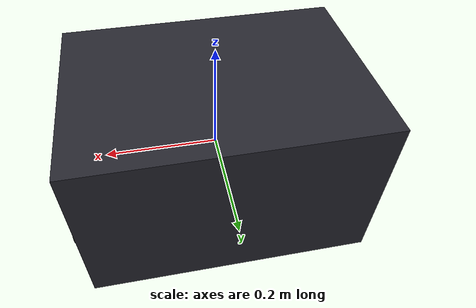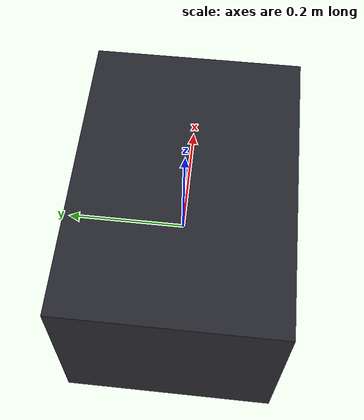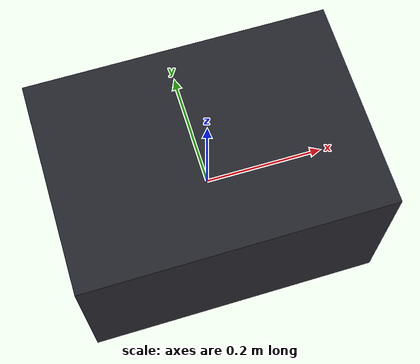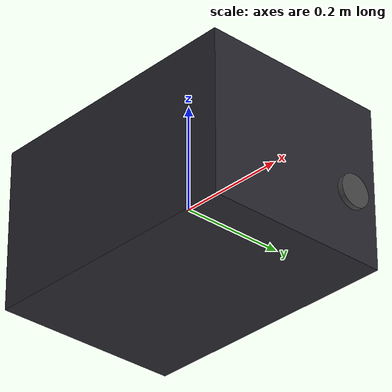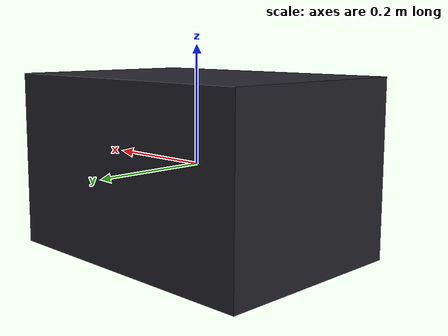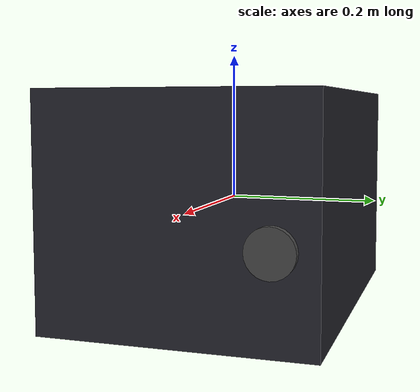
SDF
<?xml version="1.0" ?>
<sdf version="1.9">
  <model name="security_console">
    <static>true</static>
    <link name="link">
      <collision name="collision">
        <geometry>
          <box>
            <size>0.50 0.35 0.30</size>
          </box>
        </geometry>
      </collision>
      <visual name="base_visual">
        <geometry>
          <box>
            <size>0.50 0.35 0.30</size>
          </box>
        </geometry>
        <material>
          <ambient>0.12 0.12 0.14 1</ambient>
          <diffuse>0.15 0.15 0.18 1</diffuse>
          <specular>0.2 0.2 0.24 1</specular>
        </material>
      </visual>

      <visual name="led_status">
        <pose>0.22 0.0 0.10 0 0 0</pose>
        <geometry>
          <sphere>
            <radius>0.02</radius>
          </sphere>
        </geometry>
        <material>
          <ambient>0.05 0.7 0.05 1</ambient>
          <diffuse>0.1 0.9 0.1 1</diffuse>
          <emissive>0.05 0.8 0.05 1</emissive>
        </material>
      </visual>

      <visual name="xlr_connector">
        <pose>0.24 0.12 -0.03 0 1.5708 0</pose>
        <geometry>
          <cylinder>
            <radius>0.03</radius>
            <length>0.04</length>
          </cylinder>
        </geometry>
        <material>
          <ambient>0.2 0.2 0.2 1</ambient>
          <diffuse>0.28 0.28 0.28 1</diffuse>
        </material>
      </visual>
    </link>
  </model>
</sdf>
